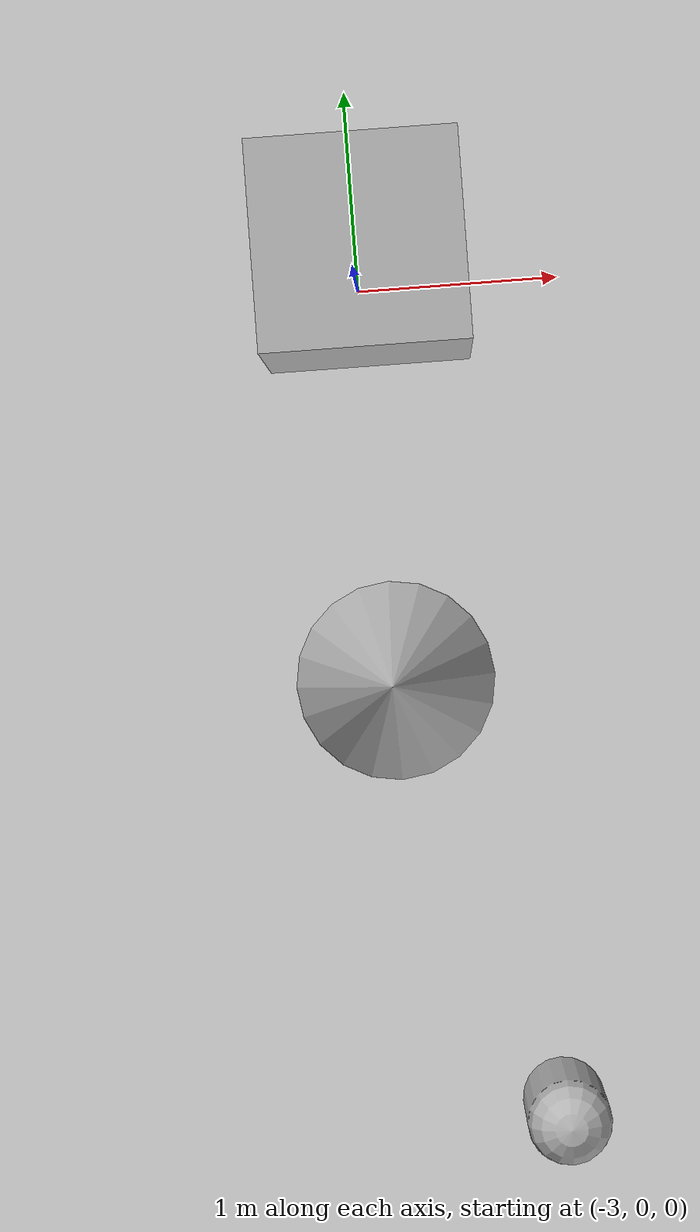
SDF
<sdf version='1.10'>
  <world name='rover'>
    <physics type='ode'>
      <max_step_size>0.002</max_step_size>
      <real_time_factor>1</real_time_factor>
      <real_time_update_rate>500</real_time_update_rate>
    </physics>
    <gravity>0 0 -9.8000000000000007</gravity>
    <magnetic_field>6.0000000000000002e-06 2.3e-05 -4.1999999999999998e-05</magnetic_field>
    <atmosphere type='adiabatic'/>
    <scene>
      <grid>true</grid>
      <ambient>0.400000006 0.400000006 0.400000006 1</ambient>
      <background>0.699999988 0.699999988 0.699999988 1</background>
      <shadows>true</shadows>
    </scene>
    <spherical_coordinates>
      <surface_model>EARTH_WGS84</surface_model>
      <world_frame_orientation>ENU</world_frame_orientation>
      <latitude_deg>47.397971057728974</latitude_deg>
      <longitude_deg>8.5461637398001464</longitude_deg>
      <elevation>0</elevation>
      <heading_deg>0</heading_deg>
    </spherical_coordinates>
    <model name='ground_plane'>
      <static>true</static>
      <link name='link'>
        <collision name='collision'>
          <geometry>
            <plane>
              <normal>0 0 1</normal>
              <size>1 1</size>
            </plane>
          </geometry>
          <surface>
            <friction>
              <ode>
                <mu>1</mu>
                <mu2>1</mu2>
              </ode>
            </friction>
            <bounce/>
            <contact>
              <collide_bitmask>65535</collide_bitmask>
              <ode>
                <min_depth>0.0050000000000000001</min_depth>
                <kp>100000000</kp>
              </ode>
            </contact>
          </surface>
        </collision>
        <visual name='visual'>
          <cast_shadows>false</cast_shadows>
          <geometry>
            <plane>
              <normal>0 0 1</normal>
              <size>400 400</size>
            </plane>
          </geometry>
          <material>
            <ambient>0.800000012 0.800000012 0.800000012 1</ambient>
            <diffuse>0.800000012 0.800000012 0.800000012 1</diffuse>
            <specular>0.800000012 0.800000012 0.800000012 1</specular>
          </material>
        </visual>
        <pose>0 0 0 0 0 0</pose>
        <inertial>
          <pose>0 0 0 0 0 0</pose>
          <mass>1</mass>
          <inertia>
            <ixx>1</ixx>
            <ixy>0</ixy>
            <ixz>0</ixz>
            <iyy>1</iyy>
            <iyz>0</iyz>
            <izz>1</izz>
          </inertia>
        </inertial>
        <enable_wind>false</enable_wind>
      </link>
      <pose>0 0 0 0 0 0</pose>
      <self_collide>false</self_collide>
    </model>
    <model name='box'>
      <pose>-2.9653905231143236 0.1230974391527011 0.49999999960799218 2.4915095660517495e-21 3.7311866581885468e-21 -1.4526213467728055e-21</pose>
      <link name='box_link'>
        <inertial>
          <inertia>
            <ixx>0.16666</ixx>
            <ixy>0</ixy>
            <ixz>0</ixz>
            <iyy>0.16666</iyy>
            <iyz>0</iyz>
            <izz>0.16666</izz>
          </inertia>
          <mass>1</mass>
          <pose>0 0 0 0 0 0</pose>
        </inertial>
        <collision name='box_collision'>
          <geometry>
            <box>
              <size>1 1 1</size>
            </box>
          </geometry>
          <surface>
            <friction>
              <ode/>
            </friction>
            <bounce/>
            <contact/>
          </surface>
        </collision>
        <visual name='box_visual'>
          <geometry>
            <box>
              <size>1 1 1</size>
            </box>
          </geometry>
          <material>
            <ambient>0.300000012 0.300000012 0.300000012 1</ambient>
            <diffuse>0.699999988 0.699999988 0.699999988 1</diffuse>
            <specular>1 1 1 1</specular>
          </material>
        </visual>
        <pose>0 0 0 0 0 0</pose>
        <enable_wind>false</enable_wind>
      </link>
      <static>false</static>
      <self_collide>false</self_collide>
    </model>
    <model name='capsule'>
      <pose>-2.2763542752740431 -4.0713868761375762 0.4999999996080039 0 0 0</pose>
      <link name='capsule_link'>
        <inertial>
          <inertia>
            <ixx>0.074153999999999998</ixx>
            <ixy>0</ixy>
            <ixz>0</ixz>
            <iyy>0.074153999999999998</iyy>
            <iyz>0</iyz>
            <izz>0.018769000000000001</izz>
          </inertia>
          <mass>1</mass>
          <pose>0 0 0 0 0 0</pose>
        </inertial>
        <collision name='capsule_collision'>
          <geometry>
            <capsule>
              <radius>0.20000000000000001</radius>
              <length>0.59999999999999998</length>
            </capsule>
          </geometry>
          <surface>
            <friction>
              <ode/>
            </friction>
            <bounce/>
            <contact/>
          </surface>
        </collision>
        <visual name='capsule_visual'>
          <geometry>
            <capsule>
              <radius>0.20000000000000001</radius>
              <length>0.59999999999999998</length>
            </capsule>
          </geometry>
          <material>
            <ambient>0.300000012 0.300000012 0.300000012 1</ambient>
            <diffuse>0.699999988 0.699999988 0.699999988 1</diffuse>
            <specular>1 1 1 1</specular>
          </material>
        </visual>
        <pose>0 0 0 0 0 0</pose>
        <enable_wind>false</enable_wind>
      </link>
      <static>false</static>
      <self_collide>false</self_collide>
    </model>
    <model name='cone'>
      <pose>-2.9550357263322553 -1.9623453887940183 0.49999999973187026 2.1017256773516821e-16 -3.0853136413913869e-09 -9.8086786641605758e-23</pose>
      <link name='cone_link'>
        <inertial>
          <inertia>
            <ixx>0.074999999999999997</ixx>
            <ixy>0</ixy>
            <ixz>0</ixz>
            <iyy>0.074999999999999997</iyy>
            <iyz>0</iyz>
            <izz>0.074999999999999997</izz>
          </inertia>
          <mass>1</mass>
          <pose>0 0 0 0 0 0</pose>
        </inertial>
        <collision name='cone_collision'>
          <geometry>
            <cone>
              <radius>0.5</radius>
              <length>1</length>
            </cone>
          </geometry>
          <surface>
            <friction>
              <ode/>
            </friction>
            <bounce/>
            <contact/>
          </surface>
        </collision>
        <visual name='cone_visual'>
          <geometry>
            <cone>
              <radius>0.5</radius>
              <length>1</length>
            </cone>
          </geometry>
          <material>
            <ambient>0.300000012 0.300000012 0.300000012 1</ambient>
            <diffuse>0.699999988 0.699999988 0.699999988 1</diffuse>
            <specular>1 1 1 1</specular>
          </material>
        </visual>
        <pose>0 0 0 0 0 0</pose>
        <enable_wind>false</enable_wind>
      </link>
      <static>false</static>
      <self_collide>false</self_collide>
    </model>
    <light name='sunUTC' type='directional'>
      <pose>0 0 500 0 0 0</pose>
      <cast_shadows>true</cast_shadows>
      <intensity>1</intensity>
      <direction>0.001 0.625 -0.78000000000000003</direction>
      <diffuse>0.903999984 0.903999984 0.903999984 1</diffuse>
      <specular>0.270999998 0.270999998 0.270999998 1</specular>
      <attenuation>
        <range>2000</range>
        <linear>0</linear>
        <constant>1</constant>
        <quadratic>0</quadratic>
      </attenuation>
      <spot>
        <inner_angle>0</inner_angle>
        <outer_angle>0</outer_angle>
        <falloff>0</falloff>
      </spot>
    </light>
  </world>
</sdf>
